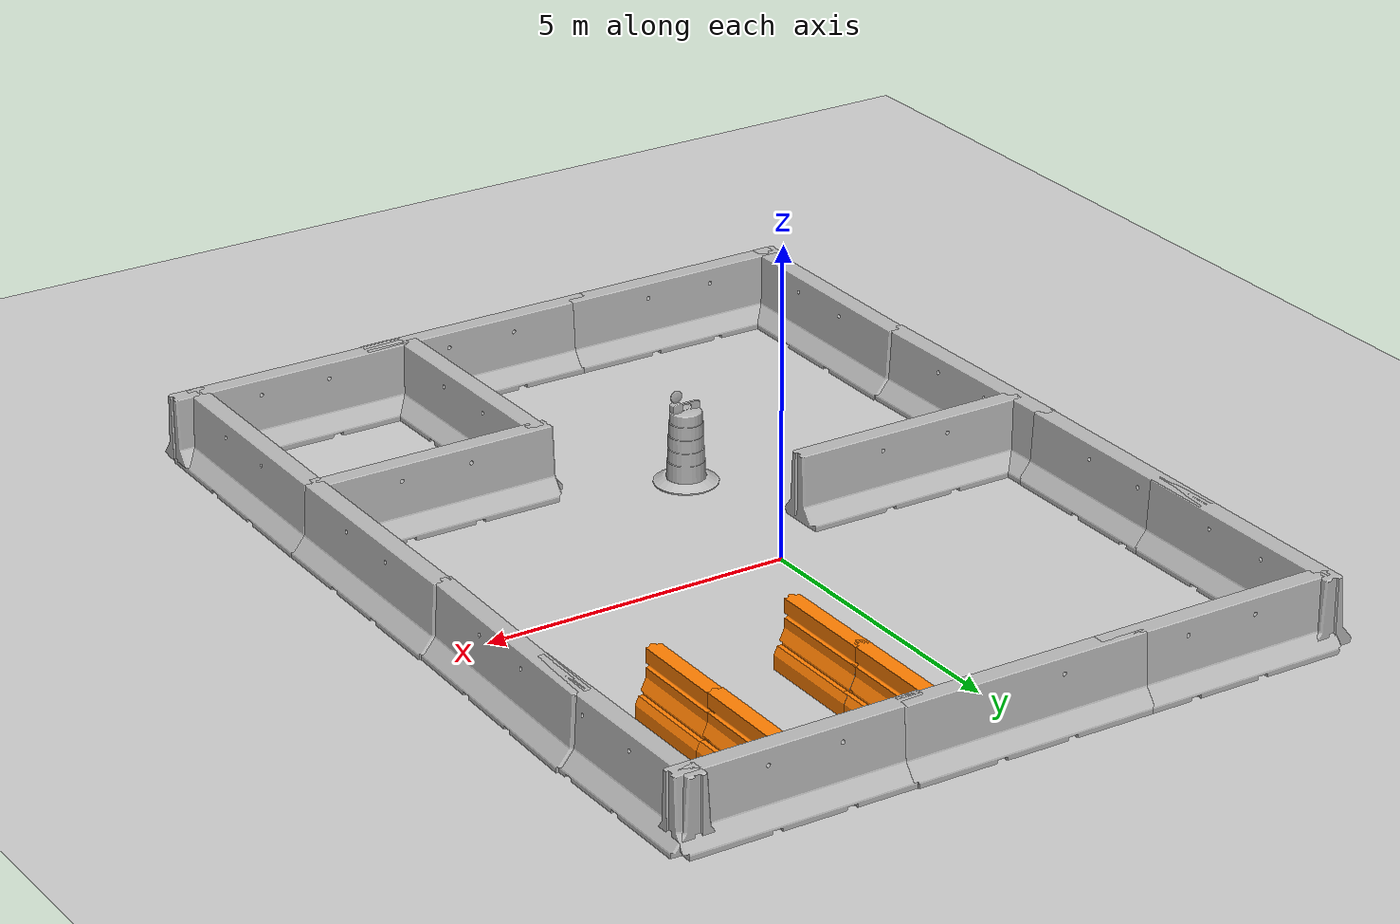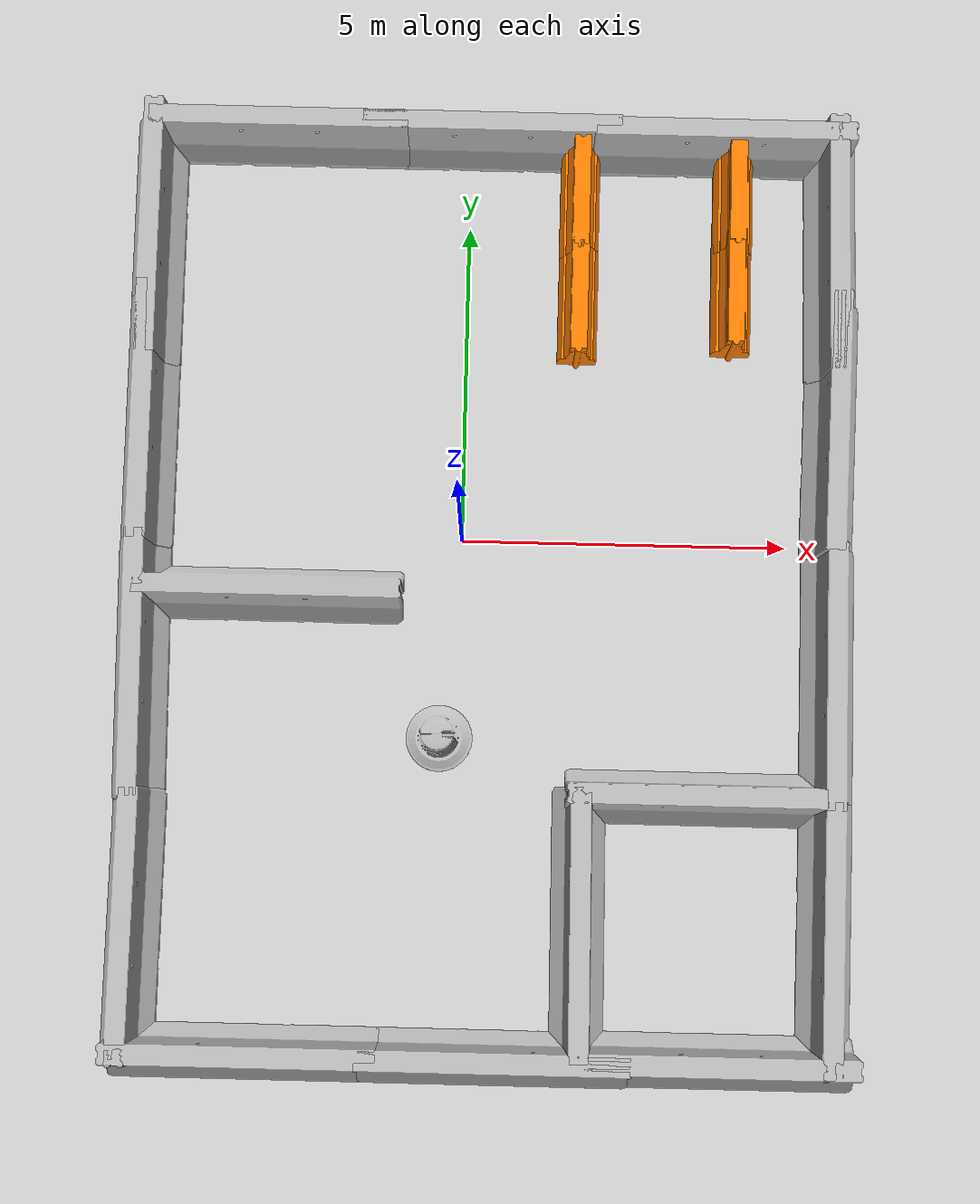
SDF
<sdf version="1.6">
 <world name="default">
  <model name="ground_plane">
   <static>1</static>
   <link name="link">
    <collision name="collision">
     <geometry><plane><normal>0 0 1</normal><size>100 100</size></plane></geometry>
     <surface><friction><ode><mu>100</mu><mu2>50</mu2></ode></friction></surface>
    </collision>
    <visual name="visual">
     <cast_shadows>0</cast_shadows>
     <geometry><plane><normal>0 0 1</normal><size>100 100</size></plane></geometry>
     <material>
      <script><uri>file://media/materials/scripts/gazebo.material</uri><name>Gazebo/Grey</name></script>
     </material>
    </visual>
   </link>
  </model>
  <model name="jersey_barrier">
   <static>1</static>
   <link name="link">
    <visual name="visual">
     <geometry>
      <mesh><uri>model://jersey_barrier/meshes/jersey_barrier.dae</uri><scale>1 1 1</scale></mesh>
     </geometry>
    </visual>
    <collision name="upright">
     <pose>0 0 0.5715 0 -0 0</pose>
     <geometry><box><size>4.06542 0.3063 1.143</size></box></geometry>
    </collision>
    <collision name="base">
     <pose>0 0 0.032258 0 -0 0</pose>
     <geometry><box><size>4.06542 0.8107 0.064516</size></box></geometry>
    </collision>
    <collision name="base2">
     <pose>0 0 0.1 0 -0 0</pose>
     <geometry><box><size>4.06542 0.65 0.1</size></box></geometry>
    </collision>
    <collision name="base3">
     <pose>0 0 0.2 0 -0 0</pose>
     <geometry><box><size>4.06542 0.5 0.1</size></box></geometry>
    </collision>
    <collision name="left-angle">
     <pose>0 -0.224 0.2401 0.9 -0 0</pose>
     <geometry><box><size>4.06542 0.5 0.064516</size></box></geometry>
    </collision>
    <collision name="right-angle">
     <pose>0 0.224 0.2401 -0.9 0 0</pose>
     <geometry><box><size>4.06542 0.5 0.064516</size></box></geometry>
    </collision>
   </link>
   <pose>0.649461 -7.8387 0 0 -0 0</pose>
  </model>
  <model name="jersey_barrier_0">
   <static>1</static>
   <link name="link">
    <visual name="visual">
     <geometry>
      <mesh><uri>model://jersey_barrier/meshes/jersey_barrier.dae</uri><scale>1 1 1</scale></mesh>
     </geometry>
    </visual>
    <collision name="upright">
     <pose>0 0 0.5715 0 -0 0</pose>
     <geometry><box><size>4.06542 0.3063 1.143</size></box></geometry>
    </collision>
    <collision name="base">
     <pose>0 0 0.032258 0 -0 0</pose>
     <geometry><box><size>4.06542 0.8107 0.064516</size></box></geometry>
    </collision>
    <collision name="base2">
     <pose>0 0 0.1 0 -0 0</pose>
     <geometry><box><size>4.06542 0.65 0.1</size></box></geometry>
    </collision>
    <collision name="base3">
     <pose>0 0 0.2 0 -0 0</pose>
     <geometry><box><size>4.06542 0.5 0.1</size></box></geometry>
    </collision>
    <collision name="left-angle">
     <pose>0 -0.224 0.2401 0.9 -0 0</pose>
     <geometry><box><size>4.06542 0.5 0.064516</size></box></geometry>
    </collision>
    <collision name="right-angle">
     <pose>0 0.224 0.2401 -0.9 0 0</pose>
     <geometry><box><size>4.06542 0.5 0.064516</size></box></geometry>
    </collision>
   </link>
   <pose>-3.05336 -7.83742 0 0 -0 0</pose>
  </model>
  <model name="jersey_barrier_1">
   <static>1</static>
   <link name="link">
    <visual name="visual">
     <geometry>
      <mesh><uri>model://jersey_barrier/meshes/jersey_barrier.dae</uri><scale>1 1 1</scale></mesh>
     </geometry>
    </visual>
    <collision name="upright">
     <pose>0 0 0.5715 0 -0 0</pose>
     <geometry><box><size>4.06542 0.3063 1.143</size></box></geometry>
    </collision>
    <collision name="base">
     <pose>0 0 0.032258 0 -0 0</pose>
     <geometry><box><size>4.06542 0.8107 0.064516</size></box></geometry>
    </collision>
    <collision name="base2">
     <pose>0 0 0.1 0 -0 0</pose>
     <geometry><box><size>4.06542 0.65 0.1</size></box></geometry>
    </collision>
    <collision name="base3">
     <pose>0 0 0.2 0 -0 0</pose>
     <geometry><box><size>4.06542 0.5 0.1</size></box></geometry>
    </collision>
    <collision name="left-angle">
     <pose>0 -0.224 0.2401 0.9 -0 0</pose>
     <geometry><box><size>4.06542 0.5 0.064516</size></box></geometry>
    </collision>
    <collision name="right-angle">
     <pose>0 0.224 0.2401 -0.9 0 0</pose>
     <geometry><box><size>4.06542 0.5 0.064516</size></box></geometry>
    </collision>
   </link>
   <pose>3.99736 -7.8131 0 0 -0 0</pose>
  </model>
  <model name="jersey_barrier_2">
   <static>1</static>
   <link name="link">
    <visual name="visual">
     <geometry>
      <mesh><uri>model://jersey_barrier/meshes/jersey_barrier.dae</uri><scale>1 1 1</scale></mesh>
     </geometry>
    </visual>
    <collision name="upright">
     <pose>0 0 0.5715 0 -0 0</pose>
     <geometry><box><size>4.06542 0.3063 1.143</size></box></geometry>
    </collision>
    <collision name="base">
     <pose>0 0 0.032258 0 -0 0</pose>
     <geometry><box><size>4.06542 0.8107 0.064516</size></box></geometry>
    </collision>
    <collision name="base2">
     <pose>0 0 0.1 0 -0 0</pose>
     <geometry><box><size>4.06542 0.65 0.1</size></box></geometry>
    </collision>
    <collision name="base3">
     <pose>0 0 0.2 0 -0 0</pose>
     <geometry><box><size>4.06542 0.5 0.1</size></box></geometry>
    </collision>
    <collision name="left-angle">
     <pose>0 -0.224 0.2401 0.9 -0 0</pose>
     <geometry><box><size>4.06542 0.5 0.064516</size></box></geometry>
    </collision>
    <collision name="right-angle">
     <pose>0 0.224 0.2401 -0.9 0 0</pose>
     <geometry><box><size>4.06542 0.5 0.064516</size></box></geometry>
    </collision>
   </link>
   <pose>-3.00056 6.39688 0 0 -0 0</pose>
  </model>
  <model name="jersey_barrier_3">
   <static>1</static>
   <link name="link">
    <visual name="visual">
     <geometry>
      <mesh><uri>model://jersey_barrier/meshes/jersey_barrier.dae</uri><scale>1 1 1</scale></mesh>
     </geometry>
    </visual>
    <collision name="upright">
     <pose>0 0 0.5715 0 -0 0</pose>
     <geometry><box><size>4.06542 0.3063 1.143</size></box></geometry>
    </collision>
    <collision name="base">
     <pose>0 0 0.032258 0 -0 0</pose>
     <geometry><box><size>4.06542 0.8107 0.064516</size></box></geometry>
    </collision>
    <collision name="base2">
     <pose>0 0 0.1 0 -0 0</pose>
     <geometry><box><size>4.06542 0.65 0.1</size></box></geometry>
    </collision>
    <collision name="base3">
     <pose>0 0 0.2 0 -0 0</pose>
     <geometry><box><size>4.06542 0.5 0.1</size></box></geometry>
    </collision>
    <collision name="left-angle">
     <pose>0 -0.224 0.2401 0.9 -0 0</pose>
     <geometry><box><size>4.06542 0.5 0.064516</size></box></geometry>
    </collision>
    <collision name="right-angle">
     <pose>0 0.224 0.2401 -0.9 0 0</pose>
     <geometry><box><size>4.06542 0.5 0.064516</size></box></geometry>
    </collision>
   </link>
   <pose>0.313406 6.39715 0 0 -0 0</pose>
  </model>
  <model name="jersey_barrier_4">
   <static>1</static>
   <link name="link">
    <visual name="visual">
     <geometry>
      <mesh><uri>model://jersey_barrier/meshes/jersey_barrier.dae</uri><scale>1 1 1</scale></mesh>
     </geometry>
    </visual>
    <collision name="upright">
     <pose>0 0 0.5715 0 -0 0</pose>
     <geometry><box><size>4.06542 0.3063 1.143</size></box></geometry>
    </collision>
    <collision name="base">
     <pose>0 0 0.032258 0 -0 0</pose>
     <geometry><box><size>4.06542 0.8107 0.064516</size></box></geometry>
    </collision>
    <collision name="base2">
     <pose>0 0 0.1 0 -0 0</pose>
     <geometry><box><size>4.06542 0.65 0.1</size></box></geometry>
    </collision>
    <collision name="base3">
     <pose>0 0 0.2 0 -0 0</pose>
     <geometry><box><size>4.06542 0.5 0.1</size></box></geometry>
    </collision>
    <collision name="left-angle">
     <pose>0 -0.224 0.2401 0.9 -0 0</pose>
     <geometry><box><size>4.06542 0.5 0.064516</size></box></geometry>
    </collision>
    <collision name="right-angle">
     <pose>0 0.224 0.2401 -0.9 0 0</pose>
     <geometry><box><size>4.06542 0.5 0.064516</size></box></geometry>
    </collision>
   </link>
   <pose>3.932 6.36977 0 0 -0 0</pose>
  </model>
  <model name="jersey_barrier_5">
   <static>1</static>
   <link name="link">
    <visual name="visual">
     <geometry>
      <mesh><uri>model://jersey_barrier/meshes/jersey_barrier.dae</uri><scale>1 1 1</scale></mesh>
     </geometry>
    </visual>
    <collision name="upright">
     <pose>0 0 0.5715 0 -0 0</pose>
     <geometry><box><size>4.06542 0.3063 1.143</size></box></geometry>
    </collision>
    <collision name="base">
     <pose>0 0 0.032258 0 -0 0</pose>
     <geometry><box><size>4.06542 0.8107 0.064516</size></box></geometry>
    </collision>
    <collision name="base2">
     <pose>0 0 0.1 0 -0 0</pose>
     <geometry><box><size>4.06542 0.65 0.1</size></box></geometry>
    </collision>
    <collision name="base3">
     <pose>0 0 0.2 0 -0 0</pose>
     <geometry><box><size>4.06542 0.5 0.1</size></box></geometry>
    </collision>
    <collision name="left-angle">
     <pose>0 -0.224 0.2401 0.9 -0 0</pose>
     <geometry><box><size>4.06542 0.5 0.064516</size></box></geometry>
    </collision>
    <collision name="right-angle">
     <pose>0 0.224 0.2401 -0.9 0 0</pose>
     <geometry><box><size>4.06542 0.5 0.064516</size></box></geometry>
    </collision>
   </link>
   <pose>5.61549 -5.9405 0 0 -0 1.55721</pose>
  </model>
  <model name="jersey_barrier_6">
   <static>1</static>
   <link name="link">
    <visual name="visual">
     <geometry>
      <mesh><uri>model://jersey_barrier/meshes/jersey_barrier.dae</uri><scale>1 1 1</scale></mesh>
     </geometry>
    </visual>
    <collision name="upright">
     <pose>0 0 0.5715 0 -0 0</pose>
     <geometry><box><size>4.06542 0.3063 1.143</size></box></geometry>
    </collision>
    <collision name="base">
     <pose>0 0 0.032258 0 -0 0</pose>
     <geometry><box><size>4.06542 0.8107 0.064516</size></box></geometry>
    </collision>
    <collision name="base2">
     <pose>0 0 0.1 0 -0 0</pose>
     <geometry><box><size>4.06542 0.65 0.1</size></box></geometry>
    </collision>
    <collision name="base3">
     <pose>0 0 0.2 0 -0 0</pose>
     <geometry><box><size>4.06542 0.5 0.1</size></box></geometry>
    </collision>
    <collision name="left-angle">
     <pose>0 -0.224 0.2401 0.9 -0 0</pose>
     <geometry><box><size>4.06542 0.5 0.064516</size></box></geometry>
    </collision>
    <collision name="right-angle">
     <pose>0 0.224 0.2401 -0.9 0 0</pose>
     <geometry><box><size>4.06542 0.5 0.064516</size></box></geometry>
    </collision>
   </link>
   <pose>5.65177 -2.0616 0 0 0 -1.57733</pose>
  </model>
  <model name="jersey_barrier_7">
   <static>1</static>
   <link name="link">
    <visual name="visual">
     <geometry>
      <mesh><uri>model://jersey_barrier/meshes/jersey_barrier.dae</uri><scale>1 1 1</scale></mesh>
     </geometry>
    </visual>
    <collision name="upright">
     <pose>0 0 0.5715 0 -0 0</pose>
     <geometry><box><size>4.06542 0.3063 1.143</size></box></geometry>
    </collision>
    <collision name="base">
     <pose>0 0 0.032258 0 -0 0</pose>
     <geometry><box><size>4.06542 0.8107 0.064516</size></box></geometry>
    </collision>
    <collision name="base2">
     <pose>0 0 0.1 0 -0 0</pose>
     <geometry><box><size>4.06542 0.65 0.1</size></box></geometry>
    </collision>
    <collision name="base3">
     <pose>0 0 0.2 0 -0 0</pose>
     <geometry><box><size>4.06542 0.5 0.1</size></box></geometry>
    </collision>
    <collision name="left-angle">
     <pose>0 -0.224 0.2401 0.9 -0 0</pose>
     <geometry><box><size>4.06542 0.5 0.064516</size></box></geometry>
    </collision>
    <collision name="right-angle">
     <pose>0 0.224 0.2401 -0.9 0 0</pose>
     <geometry><box><size>4.06542 0.5 0.064516</size></box></geometry>
    </collision>
   </link>
   <pose>5.68323 1.83548 0 0 0 -1.59689</pose>
  </model>
  <model name="jersey_barrier_8">
   <static>1</static>
   <link name="link">
    <visual name="visual">
     <geometry>
      <mesh><uri>model://jersey_barrier/meshes/jersey_barrier.dae</uri><scale>1 1 1</scale></mesh>
     </geometry>
    </visual>
    <collision name="upright">
     <pose>0 0 0.5715 0 -0 0</pose>
     <geometry><box><size>4.06542 0.3063 1.143</size></box></geometry>
    </collision>
    <collision name="base">
     <pose>0 0 0.032258 0 -0 0</pose>
     <geometry><box><size>4.06542 0.8107 0.064516</size></box></geometry>
    </collision>
    <collision name="base2">
     <pose>0 0 0.1 0 -0 0</pose>
     <geometry><box><size>4.06542 0.65 0.1</size></box></geometry>
    </collision>
    <collision name="base3">
     <pose>0 0 0.2 0 -0 0</pose>
     <geometry><box><size>4.06542 0.5 0.1</size></box></geometry>
    </collision>
    <collision name="left-angle">
     <pose>0 -0.224 0.2401 0.9 -0 0</pose>
     <geometry><box><size>4.06542 0.5 0.064516</size></box></geometry>
    </collision>
    <collision name="right-angle">
     <pose>0 0.224 0.2401 -0.9 0 0</pose>
     <geometry><box><size>4.06542 0.5 0.064516</size></box></geometry>
    </collision>
   </link>
   <pose>5.68645 4.61858 0 0 0 -1.56587</pose>
  </model>
  <model name="jersey_barrier_9">
   <static>1</static>
   <link name="link">
    <visual name="visual">
     <geometry>
      <mesh><uri>model://jersey_barrier/meshes/jersey_barrier.dae</uri><scale>1 1 1</scale></mesh>
     </geometry>
    </visual>
    <collision name="upright">
     <pose>0 0 0.5715 0 -0 0</pose>
     <geometry><box><size>4.06542 0.3063 1.143</size></box></geometry>
    </collision>
    <collision name="base">
     <pose>0 0 0.032258 0 -0 0</pose>
     <geometry><box><size>4.06542 0.8107 0.064516</size></box></geometry>
    </collision>
    <collision name="base2">
     <pose>0 0 0.1 0 -0 0</pose>
     <geometry><box><size>4.06542 0.65 0.1</size></box></geometry>
    </collision>
    <collision name="base3">
     <pose>0 0 0.2 0 -0 0</pose>
     <geometry><box><size>4.06542 0.5 0.1</size></box></geometry>
    </collision>
    <collision name="left-angle">
     <pose>0 -0.224 0.2401 0.9 -0 0</pose>
     <geometry><box><size>4.06542 0.5 0.064516</size></box></geometry>
    </collision>
    <collision name="right-angle">
     <pose>0 0.224 0.2401 -0.9 0 0</pose>
     <geometry><box><size>4.06542 0.5 0.064516</size></box></geometry>
    </collision>
   </link>
   <pose>-4.81678 -5.98067 0 0 0 -1.57506</pose>
  </model>
  <model name="jersey_barrier_10">
   <static>1</static>
   <link name="link">
    <visual name="visual">
     <geometry>
      <mesh><uri>model://jersey_barrier/meshes/jersey_barrier.dae</uri><scale>1 1 1</scale></mesh>
     </geometry>
    </visual>
    <collision name="upright">
     <pose>0 0 0.5715 0 -0 0</pose>
     <geometry><box><size>4.06542 0.3063 1.143</size></box></geometry>
    </collision>
    <collision name="base">
     <pose>0 0 0.032258 0 -0 0</pose>
     <geometry><box><size>4.06542 0.8107 0.064516</size></box></geometry>
    </collision>
    <collision name="base2">
     <pose>0 0 0.1 0 -0 0</pose>
     <geometry><box><size>4.06542 0.65 0.1</size></box></geometry>
    </collision>
    <collision name="base3">
     <pose>0 0 0.2 0 -0 0</pose>
     <geometry><box><size>4.06542 0.5 0.1</size></box></geometry>
    </collision>
    <collision name="left-angle">
     <pose>0 -0.224 0.2401 0.9 -0 0</pose>
     <geometry><box><size>4.06542 0.5 0.064516</size></box></geometry>
    </collision>
    <collision name="right-angle">
     <pose>0 0.224 0.2401 -0.9 0 0</pose>
     <geometry><box><size>4.06542 0.5 0.064516</size></box></geometry>
    </collision>
   </link>
   <pose>-4.87221 -2.09581 0 0 0 -1.55235</pose>
  </model>
  <model name="jersey_barrier_11">
   <static>1</static>
   <link name="link">
    <visual name="visual">
     <geometry>
      <mesh><uri>model://jersey_barrier/meshes/jersey_barrier.dae</uri><scale>1 1 1</scale></mesh>
     </geometry>
    </visual>
    <collision name="upright">
     <pose>0 0 0.5715 0 -0 0</pose>
     <geometry><box><size>4.06542 0.3063 1.143</size></box></geometry>
    </collision>
    <collision name="base">
     <pose>0 0 0.032258 0 -0 0</pose>
     <geometry><box><size>4.06542 0.8107 0.064516</size></box></geometry>
    </collision>
    <collision name="base2">
     <pose>0 0 0.1 0 -0 0</pose>
     <geometry><box><size>4.06542 0.65 0.1</size></box></geometry>
    </collision>
    <collision name="base3">
     <pose>0 0 0.2 0 -0 0</pose>
     <geometry><box><size>4.06542 0.5 0.1</size></box></geometry>
    </collision>
    <collision name="left-angle">
     <pose>0 -0.224 0.2401 0.9 -0 0</pose>
     <geometry><box><size>4.06542 0.5 0.064516</size></box></geometry>
    </collision>
    <collision name="right-angle">
     <pose>0 0.224 0.2401 -0.9 0 0</pose>
     <geometry><box><size>4.06542 0.5 0.064516</size></box></geometry>
    </collision>
   </link>
   <pose>-4.90577 1.77193 0 0 0 -1.56615</pose>
  </model>
  <model name="jersey_barrier_12">
   <static>1</static>
   <link name="link">
    <visual name="visual">
     <geometry>
      <mesh><uri>model://jersey_barrier/meshes/jersey_barrier.dae</uri><scale>1 1 1</scale></mesh>
     </geometry>
    </visual>
    <collision name="upright">
     <pose>0 0 0.5715 0 -0 0</pose>
     <geometry><box><size>4.06542 0.3063 1.143</size></box></geometry>
    </collision>
    <collision name="base">
     <pose>0 0 0.032258 0 -0 0</pose>
     <geometry><box><size>4.06542 0.8107 0.064516</size></box></geometry>
    </collision>
    <collision name="base2">
     <pose>0 0 0.1 0 -0 0</pose>
     <geometry><box><size>4.06542 0.65 0.1</size></box></geometry>
    </collision>
    <collision name="base3">
     <pose>0 0 0.2 0 -0 0</pose>
     <geometry><box><size>4.06542 0.5 0.1</size></box></geometry>
    </collision>
    <collision name="left-angle">
     <pose>0 -0.224 0.2401 0.9 -0 0</pose>
     <geometry><box><size>4.06542 0.5 0.064516</size></box></geometry>
    </collision>
    <collision name="right-angle">
     <pose>0 0.224 0.2401 -0.9 0 0</pose>
     <geometry><box><size>4.06542 0.5 0.064516</size></box></geometry>
    </collision>
   </link>
   <pose>-4.91764 4.64787 0 0 0 -1.56641</pose>
  </model>
  <model name="jersey_barrier_15">
   <static>1</static>
   <link name="link">
    <visual name="visual">
     <geometry>
      <mesh><uri>model://jersey_barrier/meshes/jersey_barrier.dae</uri><scale>1 1 1</scale></mesh>
     </geometry>
    </visual>
    <collision name="upright">
     <pose>0 0 0.5715 0 -0 0</pose>
     <geometry><box><size>4.06542 0.3063 1.143</size></box></geometry>
    </collision>
    <collision name="base">
     <pose>0 0 0.032258 0 -0 0</pose>
     <geometry><box><size>4.06542 0.8107 0.064516</size></box></geometry>
    </collision>
    <collision name="base2">
     <pose>0 0 0.1 0 -0 0</pose>
     <geometry><box><size>4.06542 0.65 0.1</size></box></geometry>
    </collision>
    <collision name="base3">
     <pose>0 0 0.2 0 -0 0</pose>
     <geometry><box><size>4.06542 0.5 0.1</size></box></geometry>
    </collision>
    <collision name="left-angle">
     <pose>0 -0.224 0.2401 0.9 -0 0</pose>
     <geometry><box><size>4.06542 0.5 0.064516</size></box></geometry>
    </collision>
    <collision name="right-angle">
     <pose>0 0.224 0.2401 -0.9 0 0</pose>
     <geometry><box><size>4.06542 0.5 0.064516</size></box></geometry>
    </collision>
   </link>
   <pose>1.89141 -5.80738 0 0 0 -1.56483</pose>
  </model>
  <model name="jersey_barrier_16">
   <static>1</static>
   <link name="link">
    <visual name="visual">
     <geometry>
      <mesh><uri>model://jersey_barrier/meshes/jersey_barrier.dae</uri><scale>1 1 1</scale></mesh>
     </geometry>
    </visual>
    <collision name="upright">
     <pose>0 0 0.5715 0 -0 0</pose>
     <geometry><box><size>4.06542 0.3063 1.143</size></box></geometry>
    </collision>
    <collision name="base">
     <pose>0 0 0.032258 0 -0 0</pose>
     <geometry><box><size>4.06542 0.8107 0.064516</size></box></geometry>
    </collision>
    <collision name="base2">
     <pose>0 0 0.1 0 -0 0</pose>
     <geometry><box><size>4.06542 0.65 0.1</size></box></geometry>
    </collision>
    <collision name="base3">
     <pose>0 0 0.2 0 -0 0</pose>
     <geometry><box><size>4.06542 0.5 0.1</size></box></geometry>
    </collision>
    <collision name="left-angle">
     <pose>0 -0.224 0.2401 0.9 -0 0</pose>
     <geometry><box><size>4.06542 0.5 0.064516</size></box></geometry>
    </collision>
    <collision name="right-angle">
     <pose>0 0.224 0.2401 -0.9 0 0</pose>
     <geometry><box><size>4.06542 0.5 0.064516</size></box></geometry>
    </collision>
   </link>
   <pose>3.69393 -3.90218 0 0 -0 0</pose>
  </model>
  <model name="jersey_barrier_13">
   <static>1</static>
   <link name="link">
    <visual name="visual">
     <geometry>
      <mesh><uri>model://jersey_barrier/meshes/jersey_barrier.dae</uri><scale>1 1 1</scale></mesh>
     </geometry>
    </visual>
    <collision name="upright">
     <pose>0 0 0.5715 0 -0 0</pose>
     <geometry><box><size>4.06542 0.3063 1.143</size></box></geometry>
    </collision>
    <collision name="base">
     <pose>0 0 0.032258 0 -0 0</pose>
     <geometry><box><size>4.06542 0.8107 0.064516</size></box></geometry>
    </collision>
    <collision name="base2">
     <pose>0 0 0.1 0 -0 0</pose>
     <geometry><box><size>4.06542 0.65 0.1</size></box></geometry>
    </collision>
    <collision name="base3">
     <pose>0 0 0.2 0 -0 0</pose>
     <geometry><box><size>4.06542 0.5 0.1</size></box></geometry>
    </collision>
    <collision name="left-angle">
     <pose>0 -0.224 0.2401 0.9 -0 0</pose>
     <geometry><box><size>4.06542 0.5 0.064516</size></box></geometry>
    </collision>
    <collision name="right-angle">
     <pose>0 0.224 0.2401 -0.9 0 0</pose>
     <geometry><box><size>4.06542 0.5 0.064516</size></box></geometry>
    </collision>
   </link>
   <pose>-2.9137 -0.921025 0 0 -0 0</pose>
  </model>
  <model name="drc_practice_organge_jersey_barrier">
   <static>1</static>
   <link name="link">
    <visual name="visual">
     <geometry>
      <mesh>
       <uri>model://drc_practice_orange_jersey_barrier/meshes/jersey_barrier.dae</uri>
       <scale>1 1 1</scale>
      </mesh>
     </geometry>
    </visual>
    <collision name="collision">
     <geometry>
      <mesh>
       <uri>model://drc_practice_orange_jersey_barrier/meshes/jersey_barrier.dae</uri>
       <scale>1 1 1</scale>
      </mesh>
     </geometry>
    </collision>
   </link>
   <pose>1.71625 5.3827 0 0 -0 0</pose>
  </model>
  <model name="drc_practice_organge_jersey_barrier_0">
   <static>1</static>
   <link name="link">
    <visual name="visual">
     <geometry>
      <mesh>
       <uri>model://drc_practice_orange_jersey_barrier/meshes/jersey_barrier.dae</uri>
       <scale>1 1 1</scale>
      </mesh>
     </geometry>
    </visual>
    <collision name="collision">
     <geometry>
      <mesh>
       <uri>model://drc_practice_orange_jersey_barrier/meshes/jersey_barrier.dae</uri>
       <scale>1 1 1</scale>
      </mesh>
     </geometry>
    </collision>
   </link>
   <pose>1.71575 3.73695 0 0 -0 0</pose>
  </model>
  <model name="Construction Barrel">
   <static>1</static>
   <link name="link">
    <inertial>
     <pose>0 0 0.4 0 -0 0</pose>
     <mass>500</mass>
     <inertia><ixx>51.2096</ixx><iyy>51.2096</iyy><izz>25</izz><ixy>0</ixy><ixz>0</ixz><iyz>0</iyz></inertia>
    </inertial>
    <collision name="collision">
     <geometry>
      <mesh><uri>model://construction_barrel/meshes/construction_barrel.dae</uri><scale>1 1 1</scale></mesh>
     </geometry>
    </collision>
    <visual name="visual">
     <geometry>
      <mesh><uri>model://construction_barrel/meshes/construction_barrel.dae</uri><scale>1 1 1</scale></mesh>
     </geometry>
    </visual>
   </link>
   <pose>-0.275578 -3.07347 0 0 -0 0</pose>
  </model>
  <model name="drc_practice_organge_jersey_barrier_1">
   <static>1</static>
   <link name="link">
    <visual name="visual">
     <geometry>
      <mesh>
       <uri>model://drc_practice_orange_jersey_barrier/meshes/jersey_barrier.dae</uri>
       <scale>1 1 1</scale>
      </mesh>
     </geometry>
    </visual>
    <collision name="collision">
     <geometry>
      <mesh>
       <uri>model://drc_practice_orange_jersey_barrier/meshes/jersey_barrier.dae</uri>
       <scale>1 1 1</scale>
      </mesh>
     </geometry>
    </collision>
   </link>
   <pose>4.13368 5.51645 -0.00339 0 -0 0</pose>
  </model>
  <model name="drc_practice_organge_jersey_barrier_2">
   <static>1</static>
   <link name="link">
    <visual name="visual">
     <geometry>
      <mesh>
       <uri>model://drc_practice_orange_jersey_barrier/meshes/jersey_barrier.dae</uri>
       <scale>1 1 1</scale>
      </mesh>
     </geometry>
    </visual>
    <collision name="collision">
     <geometry>
      <mesh>
       <uri>model://drc_practice_orange_jersey_barrier/meshes/jersey_barrier.dae</uri>
       <scale>1 1 1</scale>
      </mesh>
     </geometry>
    </collision>
   </link>
   <pose>4.11739 3.917 -0.026718 0 -0 0</pose>
  </model>
 </world>
</sdf>
